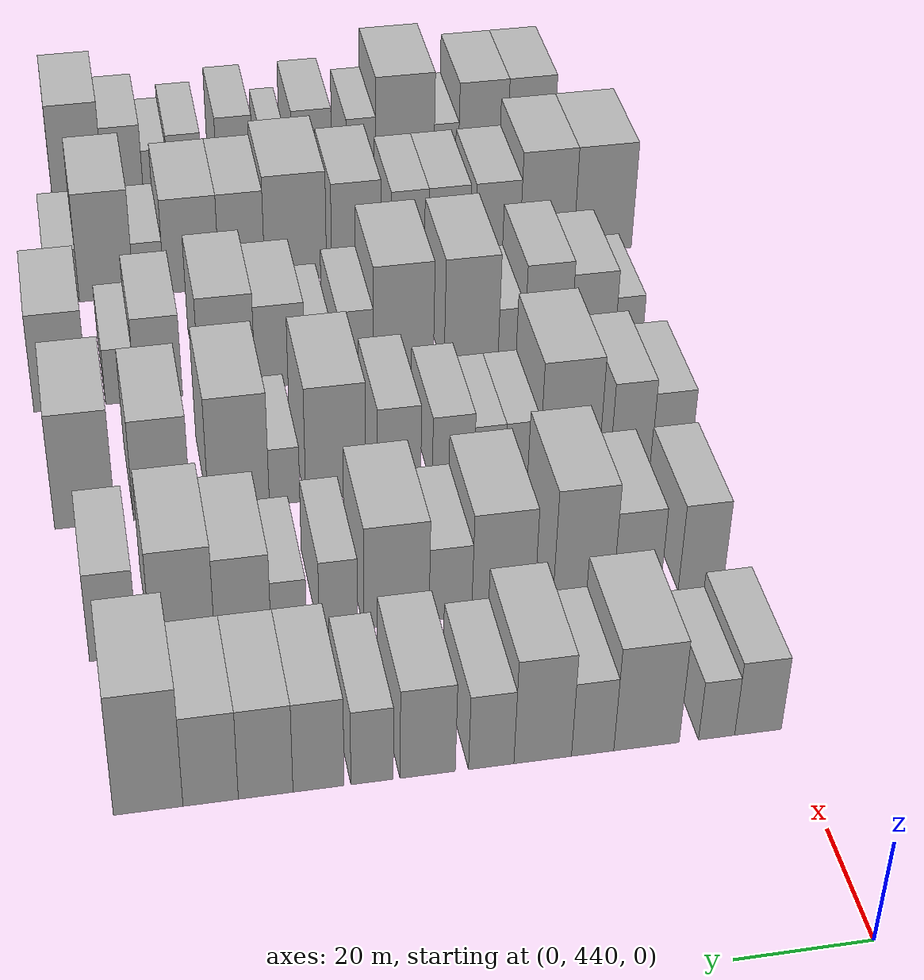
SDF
<sdf version="1.6">
 <world name="default">
  <model name="building_107">
   <static>1</static>
   <pose>50.0000 444.1435 0 0.000000 0.000000 0.000000</pose>
   <link name="link">
    <pose>0 0 7.50 0 0 0</pose>
    <collision name="collision"><geometry><box><size>20.0000 7.2730 15.0000</size></box></geometry></collision>
    <visual name="visual">
     <cast_shadows>0</cast_shadows>
     <geometry><box><size>20.0000 7.2730 15.0000</size></box></geometry>
     <material>
      <script>
       <uri>model://HANNAS_wall/materials/scripts</uri>
       <uri>model://HANNAS_wall/materials/textures</uri>
       <name>vrc/HANNAS_wall</name>
      </script>
     </material>
    </visual>
   </link>
  </model>
  <model name="building_108">
   <static>1</static>
   <pose>50.0000 450.5867 0 0.000000 0.000000 0.000000</pose>
   <link name="link">
    <pose>0 0 6.00 0 0 0</pose>
    <collision name="collision"><geometry><box><size>20.0000 5.6134 12.0000</size></box></geometry></collision>
    <visual name="visual">
     <cast_shadows>0</cast_shadows>
     <geometry><box><size>20.0000 5.6134 12.0000</size></box></geometry>
     <material>
      <script>
       <uri>model://HANNAS_wall/materials/scripts</uri>
       <uri>model://HANNAS_wall/materials/textures</uri>
       <name>vrc/HANNAS_wall</name>
      </script>
     </material>
    </visual>
   </link>
  </model>
  <model name="building_109">
   <static>1</static>
   <pose>50.0000 461.4292 0 0.000000 0.000000 0.000000</pose>
   <link name="link">
    <pose>0 0 10.50 0 0 0</pose>
    <collision name="collision"><geometry><box><size>20.0000 10.0715 21.0000</size></box></geometry></collision>
    <visual name="visual">
     <cast_shadows>0</cast_shadows>
     <geometry><box><size>20.0000 10.0715 21.0000</size></box></geometry>
     <material>
      <script>
       <uri>model://HANNAS_wall/materials/scripts</uri>
       <uri>model://HANNAS_wall/materials/textures</uri>
       <name>vrc/HANNAS_wall</name>
      </script>
     </material>
    </visual>
   </link>
  </model>
  <model name="building_110">
   <static>1</static>
   <pose>50.0000 469.7003 0 0.000000 0.000000 0.000000</pose>
   <link name="link">
    <pose>0 0 7.50 0 0 0</pose>
    <collision name="collision"><geometry><box><size>20.0000 6.4708 15.0000</size></box></geometry></collision>
    <visual name="visual">
     <cast_shadows>0</cast_shadows>
     <geometry><box><size>20.0000 6.4708 15.0000</size></box></geometry>
     <material>
      <script>
       <uri>model://HANNAS_wall/materials/scripts</uri>
       <uri>model://HANNAS_wall/materials/textures</uri>
       <name>vrc/HANNAS_wall</name>
      </script>
     </material>
    </visual>
   </link>
  </model>
  <model name="building_111">
   <static>1</static>
   <pose>50.0000 477.3151 0 0.000000 0.000000 0.000000</pose>
   <link name="link">
    <pose>0 0 10.50 0 0 0</pose>
    <collision name="collision"><geometry><box><size>20.0000 8.7586 21.0000</size></box></geometry></collision>
    <visual name="visual">
     <cast_shadows>0</cast_shadows>
     <geometry><box><size>20.0000 8.7586 21.0000</size></box></geometry>
     <material>
      <script>
       <uri>model://HANNAS_wall/materials/scripts</uri>
       <uri>model://HANNAS_wall/materials/textures</uri>
       <name>vrc/HANNAS_wall</name>
      </script>
     </material>
    </visual>
   </link>
  </model>
  <model name="building_112">
   <static>1</static>
   <pose>50.0000 485.1216 0 0.000000 0.000000 0.000000</pose>
   <link name="link">
    <pose>0 0 7.50 0 0 0</pose>
    <collision name="collision"><geometry><box><size>20.0000 6.8545 15.0000</size></box></geometry></collision>
    <visual name="visual">
     <cast_shadows>0</cast_shadows>
     <geometry><box><size>20.0000 6.8545 15.0000</size></box></geometry>
     <material>
      <script>
       <uri>model://HANNAS_wall/materials/scripts</uri>
       <uri>model://HANNAS_wall/materials/textures</uri>
       <name>vrc/HANNAS_wall</name>
      </script>
     </material>
    </visual>
   </link>
  </model>
  <model name="building_113">
   <static>1</static>
   <pose>50.0000 494.6960 0 0.000000 0.000000 0.000000</pose>
   <link name="link">
    <pose>0 0 9.00 0 0 0</pose>
    <collision name="collision"><geometry><box><size>20.0000 8.2941 18.0000</size></box></geometry></collision>
    <visual name="visual">
     <cast_shadows>0</cast_shadows>
     <geometry><box><size>20.0000 8.2941 18.0000</size></box></geometry>
     <material>
      <script>
       <uri>model://HANNAS_wall/materials/scripts</uri>
       <uri>model://HANNAS_wall/materials/textures</uri>
       <name>vrc/HANNAS_wall</name>
      </script>
     </material>
    </visual>
   </link>
  </model>
  <model name="building_114">
   <static>1</static>
   <pose>50.0000 502.9993 0 0.000000 0.000000 0.000000</pose>
   <link name="link">
    <pose>0 0 7.50 0 0 0</pose>
    <collision name="collision"><geometry><box><size>20.0000 6.3126 15.0000</size></box></geometry></collision>
    <visual name="visual">
     <cast_shadows>0</cast_shadows>
     <geometry><box><size>20.0000 6.3126 15.0000</size></box></geometry>
     <material>
      <script>
       <uri>model://HANNAS_wall/materials/scripts</uri>
       <uri>model://HANNAS_wall/materials/textures</uri>
       <name>vrc/HANNAS_wall</name>
      </script>
     </material>
    </visual>
   </link>
  </model>
  <model name="building_115">
   <static>1</static>
   <pose>50.0000 510.9421 0 0.000000 0.000000 0.000000</pose>
   <link name="link">
    <pose>0 0 9.00 0 0 0</pose>
    <collision name="collision"><geometry><box><size>20.0000 7.5730 18.0000</size></box></geometry></collision>
    <visual name="visual">
     <cast_shadows>0</cast_shadows>
     <geometry><box><size>20.0000 7.5730 18.0000</size></box></geometry>
     <material>
      <script>
       <uri>model://HANNAS_wall/materials/scripts</uri>
       <uri>model://HANNAS_wall/materials/textures</uri>
       <name>vrc/HANNAS_wall</name>
      </script>
     </material>
    </visual>
   </link>
  </model>
  <model name="building_116">
   <static>1</static>
   <pose>50.0000 518.7507 0 0.000000 0.000000 0.000000</pose>
   <link name="link">
    <pose>0 0 9.00 0 0 0</pose>
    <collision name="collision"><geometry><box><size>20.0000 8.0443 18.0000</size></box></geometry></collision>
    <visual name="visual">
     <cast_shadows>0</cast_shadows>
     <geometry><box><size>20.0000 8.0443 18.0000</size></box></geometry>
     <material>
      <script>
       <uri>model://HANNAS_wall/materials/scripts</uri>
       <uri>model://HANNAS_wall/materials/textures</uri>
       <name>vrc/HANNAS_wall</name>
      </script>
     </material>
    </visual>
   </link>
  </model>
  <model name="building_117">
   <static>1</static>
   <pose>50.0000 526.8168 0 0.000000 0.000000 0.000000</pose>
   <link name="link">
    <pose>0 0 9.00 0 0 0</pose>
    <collision name="collision"><geometry><box><size>20.0000 8.0880 18.0000</size></box></geometry></collision>
    <visual name="visual">
     <cast_shadows>0</cast_shadows>
     <geometry><box><size>20.0000 8.0880 18.0000</size></box></geometry>
     <material>
      <script>
       <uri>model://HANNAS_wall/materials/scripts</uri>
       <uri>model://HANNAS_wall/materials/textures</uri>
       <name>vrc/HANNAS_wall</name>
      </script>
     </material>
    </visual>
   </link>
  </model>
  <model name="building_118">
   <static>1</static>
   <pose>50.0000 535.9149 0 0.000000 0.000000 0.000000</pose>
   <link name="link">
    <pose>0 0 12.00 0 0 0</pose>
    <collision name="collision"><geometry><box><size>20.0000 10.1081 24.0000</size></box></geometry></collision>
    <visual name="visual">
     <cast_shadows>0</cast_shadows>
     <geometry><box><size>20.0000 10.1081 24.0000</size></box></geometry>
     <material>
      <script>
       <uri>model://HANNAS_wall/materials/scripts</uri>
       <uri>model://HANNAS_wall/materials/textures</uri>
       <name>vrc/HANNAS_wall</name>
      </script>
     </material>
    </visual>
   </link>
  </model>
  <model name="building_230">
   <static>1</static>
   <pose>82.0000 443.8423 0 0.000000 0.000000 0.000000</pose>
   <link name="link">
    <pose>0 0 9.00 0 0 0</pose>
    <collision name="collision"><geometry><box><size>20.0000 7.5049 18.0000</size></box></geometry></collision>
    <visual name="visual">
     <cast_shadows>0</cast_shadows>
     <geometry><box><size>20.0000 7.5049 18.0000</size></box></geometry>
     <material>
      <script>
       <uri>model://HANNAS_wall/materials/scripts</uri>
       <uri>model://HANNAS_wall/materials/textures</uri>
       <name>vrc/HANNAS_wall</name>
      </script>
     </material>
    </visual>
   </link>
  </model>
  <model name="building_231">
   <static>1</static>
   <pose>82.0000 454.5261 0 0.000000 0.000000 0.000000</pose>
   <link name="link">
    <pose>0 0 9.00 0 0 0</pose>
    <collision name="collision"><geometry><box><size>20.0000 7.8626 18.0000</size></box></geometry></collision>
    <visual name="visual">
     <cast_shadows>0</cast_shadows>
     <geometry><box><size>20.0000 7.8626 18.0000</size></box></geometry>
     <material>
      <script>
       <uri>model://HANNAS_wall/materials/scripts</uri>
       <uri>model://HANNAS_wall/materials/textures</uri>
       <name>vrc/HANNAS_wall</name>
      </script>
     </material>
    </visual>
   </link>
  </model>
  <model name="building_232">
   <static>1</static>
   <pose>82.0000 463.3936 0 0.000000 0.000000 0.000000</pose>
   <link name="link">
    <pose>0 0 12.00 0 0 0</pose>
    <collision name="collision"><geometry><box><size>20.0000 9.8724 24.0000</size></box></geometry></collision>
    <visual name="visual">
     <cast_shadows>0</cast_shadows>
     <geometry><box><size>20.0000 9.8724 24.0000</size></box></geometry>
     <material>
      <script>
       <uri>model://HANNAS_wall/materials/scripts</uri>
       <uri>model://HANNAS_wall/materials/textures</uri>
       <name>vrc/HANNAS_wall</name>
      </script>
     </material>
    </visual>
   </link>
  </model>
  <model name="building_233">
   <static>1</static>
   <pose>82.0000 476.4300 0 0.000000 0.000000 0.000000</pose>
   <link name="link">
    <pose>0 0 10.50 0 0 0</pose>
    <collision name="collision"><geometry><box><size>20.0000 10.2004 21.0000</size></box></geometry></collision>
    <visual name="visual">
     <cast_shadows>0</cast_shadows>
     <geometry><box><size>20.0000 10.2004 21.0000</size></box></geometry>
     <material>
      <script>
       <uri>model://HANNAS_wall/materials/scripts</uri>
       <uri>model://HANNAS_wall/materials/textures</uri>
       <name>vrc/HANNAS_wall</name>
      </script>
     </material>
    </visual>
   </link>
  </model>
  <model name="building_234">
   <static>1</static>
   <pose>82.0000 484.9787 0 0.000000 0.000000 0.000000</pose>
   <link name="link">
    <pose>0 0 7.50 0 0 0</pose>
    <collision name="collision"><geometry><box><size>20.0000 6.8971 15.0000</size></box></geometry></collision>
    <visual name="visual">
     <cast_shadows>0</cast_shadows>
     <geometry><box><size>20.0000 6.8971 15.0000</size></box></geometry>
     <material>
      <script>
       <uri>model://HANNAS_wall/materials/scripts</uri>
       <uri>model://HANNAS_wall/materials/textures</uri>
       <name>vrc/HANNAS_wall</name>
      </script>
     </material>
    </visual>
   </link>
  </model>
  <model name="building_235">
   <static>1</static>
   <pose>82.0000 493.6586 0 0.000000 0.000000 0.000000</pose>
   <link name="link">
    <pose>0 0 10.50 0 0 0</pose>
    <collision name="collision"><geometry><box><size>20.0000 10.4626 21.0000</size></box></geometry></collision>
    <visual name="visual">
     <cast_shadows>0</cast_shadows>
     <geometry><box><size>20.0000 10.4626 21.0000</size></box></geometry>
     <material>
      <script>
       <uri>model://HANNAS_wall/materials/scripts</uri>
       <uri>model://HANNAS_wall/materials/textures</uri>
       <name>vrc/HANNAS_wall</name>
      </script>
     </material>
    </visual>
   </link>
  </model>
  <model name="building_236">
   <static>1</static>
   <pose>82.0000 502.9506 0 0.000000 0.000000 0.000000</pose>
   <link name="link">
    <pose>0 0 7.50 0 0 0</pose>
    <collision name="collision"><geometry><box><size>20.0000 6.1216 15.0000</size></box></geometry></collision>
    <visual name="visual">
     <cast_shadows>0</cast_shadows>
     <geometry><box><size>20.0000 6.1216 15.0000</size></box></geometry>
     <material>
      <script>
       <uri>model://HANNAS_wall/materials/scripts</uri>
       <uri>model://HANNAS_wall/materials/textures</uri>
       <name>vrc/HANNAS_wall</name>
      </script>
     </material>
    </visual>
   </link>
  </model>
  <model name="building_237">
   <static>1</static>
   <pose>82.0000 510.8361 0 0.000000 0.000000 0.000000</pose>
   <link name="link">
    <pose>0 0 6.00 0 0 0</pose>
    <collision name="collision"><geometry><box><size>20.0000 5.6493 12.0000</size></box></geometry></collision>
    <visual name="visual">
     <cast_shadows>0</cast_shadows>
     <geometry><box><size>20.0000 5.6493 12.0000</size></box></geometry>
     <material>
      <script>
       <uri>model://HANNAS_wall/materials/scripts</uri>
       <uri>model://HANNAS_wall/materials/textures</uri>
       <name>vrc/HANNAS_wall</name>
      </script>
     </material>
    </visual>
   </link>
  </model>
  <model name="building_238">
   <static>1</static>
   <pose>82.0000 518.0949 0 0.000000 0.000000 0.000000</pose>
   <link name="link">
    <pose>0 0 9.00 0 0 0</pose>
    <collision name="collision"><geometry><box><size>20.0000 8.8684 18.0000</size></box></geometry></collision>
    <visual name="visual">
     <cast_shadows>0</cast_shadows>
     <geometry><box><size>20.0000 8.8684 18.0000</size></box></geometry>
     <material>
      <script>
       <uri>model://HANNAS_wall/materials/scripts</uri>
       <uri>model://HANNAS_wall/materials/textures</uri>
       <name>vrc/HANNAS_wall</name>
      </script>
     </material>
    </visual>
   </link>
  </model>
  <model name="building_239">
   <static>1</static>
   <pose>82.0000 527.5415 0 0.000000 0.000000 0.000000</pose>
   <link name="link">
    <pose>0 0 10.50 0 0 0</pose>
    <collision name="collision"><geometry><box><size>20.0000 10.0247 21.0000</size></box></geometry></collision>
    <visual name="visual">
     <cast_shadows>0</cast_shadows>
     <geometry><box><size>20.0000 10.0247 21.0000</size></box></geometry>
     <material>
      <script>
       <uri>model://HANNAS_wall/materials/scripts</uri>
       <uri>model://HANNAS_wall/materials/textures</uri>
       <name>vrc/HANNAS_wall</name>
      </script>
     </material>
    </visual>
   </link>
  </model>
  <model name="building_240">
   <static>1</static>
   <pose>82.0000 538.3490 0 0.000000 0.000000 0.000000</pose>
   <link name="link">
    <pose>0 0 9.00 0 0 0</pose>
    <collision name="collision"><geometry><box><size>20.0000 7.5904 18.0000</size></box></geometry></collision>
    <visual name="visual">
     <cast_shadows>0</cast_shadows>
     <geometry><box><size>20.0000 7.5904 18.0000</size></box></geometry>
     <material>
      <script>
       <uri>model://HANNAS_wall/materials/scripts</uri>
       <uri>model://HANNAS_wall/materials/textures</uri>
       <name>vrc/HANNAS_wall</name>
      </script>
     </material>
    </visual>
   </link>
  </model>
  <model name="building_353">
   <static>1</static>
   <pose>114.0000 439.8973 0 0.000000 0.000000 0.000000</pose>
   <link name="link">
    <pose>0 0 7.50 0 0 0</pose>
    <collision name="collision"><geometry><box><size>20.0000 7.1136 15.0000</size></box></geometry></collision>
    <visual name="visual">
     <cast_shadows>0</cast_shadows>
     <geometry><box><size>20.0000 7.1136 15.0000</size></box></geometry>
     <material>
      <script>
       <uri>model://HANNAS_wall/materials/scripts</uri>
       <uri>model://HANNAS_wall/materials/textures</uri>
       <name>vrc/HANNAS_wall</name>
      </script>
     </material>
    </visual>
   </link>
  </model>
  <model name="building_354">
   <static>1</static>
   <pose>114.0000 447.1032 0 0.000000 0.000000 0.000000</pose>
   <link name="link">
    <pose>0 0 9.00 0 0 0</pose>
    <collision name="collision"><geometry><box><size>20.0000 7.2982 18.0000</size></box></geometry></collision>
    <visual name="visual">
     <cast_shadows>0</cast_shadows>
     <geometry><box><size>20.0000 7.2982 18.0000</size></box></geometry>
     <material>
      <script>
       <uri>model://HANNAS_wall/materials/scripts</uri>
       <uri>model://HANNAS_wall/materials/textures</uri>
       <name>vrc/HANNAS_wall</name>
      </script>
     </material>
    </visual>
   </link>
  </model>
  <model name="building_355">
   <static>1</static>
   <pose>114.0000 457.9803 0 0.000000 0.000000 0.000000</pose>
   <link name="link">
    <pose>0 0 12.00 0 0 0</pose>
    <collision name="collision"><geometry><box><size>20.0000 10.4559 24.0000</size></box></geometry></collision>
    <visual name="visual">
     <cast_shadows>0</cast_shadows>
     <geometry><box><size>20.0000 10.4559 24.0000</size></box></geometry>
     <material>
      <script>
       <uri>model://HANNAS_wall/materials/scripts</uri>
       <uri>model://HANNAS_wall/materials/textures</uri>
       <name>vrc/HANNAS_wall</name>
      </script>
     </material>
    </visual>
   </link>
  </model>
  <model name="building_356">
   <static>1</static>
   <pose>114.0000 466.1855 0 0.000000 0.000000 0.000000</pose>
   <link name="link">
    <pose>0 0 6.00 0 0 0</pose>
    <collision name="collision"><geometry><box><size>20.0000 5.9545 12.0000</size></box></geometry></collision>
    <visual name="visual">
     <cast_shadows>0</cast_shadows>
     <geometry><box><size>20.0000 5.9545 12.0000</size></box></geometry>
     <material>
      <script>
       <uri>model://HANNAS_wall/materials/scripts</uri>
       <uri>model://HANNAS_wall/materials/textures</uri>
       <name>vrc/HANNAS_wall</name>
      </script>
     </material>
    </visual>
   </link>
  </model>
  <model name="building_357">
   <static>1</static>
   <pose>114.0000 471.8690 0 0.000000 0.000000 0.000000</pose>
   <link name="link">
    <pose>0 0 6.00 0 0 0</pose>
    <collision name="collision"><geometry><box><size>20.0000 5.4126 12.0000</size></box></geometry></collision>
    <visual name="visual">
     <cast_shadows>0</cast_shadows>
     <geometry><box><size>20.0000 5.4126 12.0000</size></box></geometry>
     <material>
      <script>
       <uri>model://HANNAS_wall/materials/scripts</uri>
       <uri>model://HANNAS_wall/materials/textures</uri>
       <name>vrc/HANNAS_wall</name>
      </script>
     </material>
    </visual>
   </link>
  </model>
  <model name="building_358">
   <static>1</static>
   <pose>114.0000 478.1960 0 0.000000 0.000000 0.000000</pose>
   <link name="link">
    <pose>0 0 7.50 0 0 0</pose>
    <collision name="collision"><geometry><box><size>20.0000 7.2413 15.0000</size></box></geometry></collision>
    <visual name="visual">
     <cast_shadows>0</cast_shadows>
     <geometry><box><size>20.0000 7.2413 15.0000</size></box></geometry>
     <material>
      <script>
       <uri>model://HANNAS_wall/materials/scripts</uri>
       <uri>model://HANNAS_wall/materials/textures</uri>
       <name>vrc/HANNAS_wall</name>
      </script>
     </material>
    </visual>
   </link>
  </model>
  <model name="building_359">
   <static>1</static>
   <pose>114.0000 487.5260 0 0.000000 0.000000 0.000000</pose>
   <link name="link">
    <pose>0 0 9.00 0 0 0</pose>
    <collision name="collision"><geometry><box><size>20.0000 7.4186 18.0000</size></box></geometry></collision>
    <visual name="visual">
     <cast_shadows>0</cast_shadows>
     <geometry><box><size>20.0000 7.4186 18.0000</size></box></geometry>
     <material>
      <script>
       <uri>model://HANNAS_wall/materials/scripts</uri>
       <uri>model://HANNAS_wall/materials/textures</uri>
       <name>vrc/HANNAS_wall</name>
      </script>
     </material>
    </visual>
   </link>
  </model>
  <model name="building_360">
   <static>1</static>
   <pose>114.0000 498.3604 0 0.000000 0.000000 0.000000</pose>
   <link name="link">
    <pose>0 0 12.00 0 0 0</pose>
    <collision name="collision"><geometry><box><size>20.0000 10.2502 24.0000</size></box></geometry></collision>
    <visual name="visual">
     <cast_shadows>0</cast_shadows>
     <geometry><box><size>20.0000 10.2502 24.0000</size></box></geometry>
     <material>
      <script>
       <uri>model://HANNAS_wall/materials/scripts</uri>
       <uri>model://HANNAS_wall/materials/textures</uri>
       <name>vrc/HANNAS_wall</name>
      </script>
     </material>
    </visual>
   </link>
  </model>
  <model name="building_361">
   <static>1</static>
   <pose>114.0000 507.0831 0 0.000000 0.000000 0.000000</pose>
   <link name="link">
    <pose>0 0 6.00 0 0 0</pose>
    <collision name="collision"><geometry><box><size>20.0000 5.1952 12.0000</size></box></geometry></collision>
    <visual name="visual">
     <cast_shadows>0</cast_shadows>
     <geometry><box><size>20.0000 5.1952 12.0000</size></box></geometry>
     <material>
      <script>
       <uri>model://HANNAS_wall/materials/scripts</uri>
       <uri>model://HANNAS_wall/materials/textures</uri>
       <name>vrc/HANNAS_wall</name>
      </script>
     </material>
    </visual>
   </link>
  </model>
  <model name="building_362">
   <static>1</static>
   <pose>114.0000 514.8184 0 0.000000 0.000000 0.000000</pose>
   <link name="link">
    <pose>0 0 12.00 0 0 0</pose>
    <collision name="collision"><geometry><box><size>20.0000 10.2754 24.0000</size></box></geometry></collision>
    <visual name="visual">
     <cast_shadows>0</cast_shadows>
     <geometry><box><size>20.0000 10.2754 24.0000</size></box></geometry>
     <material>
      <script>
       <uri>model://HANNAS_wall/materials/scripts</uri>
       <uri>model://HANNAS_wall/materials/textures</uri>
       <name>vrc/HANNAS_wall</name>
      </script>
     </material>
    </visual>
   </link>
  </model>
  <model name="building_363">
   <static>1</static>
   <pose>114.0000 527.7346 0 0.000000 0.000000 0.000000</pose>
   <link name="link">
    <pose>0 0 10.50 0 0 0</pose>
    <collision name="collision"><geometry><box><size>20.0000 9.5572 21.0000</size></box></geometry></collision>
    <visual name="visual">
     <cast_shadows>0</cast_shadows>
     <geometry><box><size>20.0000 9.5572 21.0000</size></box></geometry>
     <material>
      <script>
       <uri>model://HANNAS_wall/materials/scripts</uri>
       <uri>model://HANNAS_wall/materials/textures</uri>
       <name>vrc/HANNAS_wall</name>
      </script>
     </material>
    </visual>
   </link>
  </model>
  <model name="building_364">
   <static>1</static>
   <pose>114.0000 540.5787 0 0.000000 0.000000 0.000000</pose>
   <link name="link">
    <pose>0 0 12.00 0 0 0</pose>
    <collision name="collision"><geometry><box><size>20.0000 10.1309 24.0000</size></box></geometry></collision>
    <visual name="visual">
     <cast_shadows>0</cast_shadows>
     <geometry><box><size>20.0000 10.1309 24.0000</size></box></geometry>
     <material>
      <script>
       <uri>model://HANNAS_wall/materials/scripts</uri>
       <uri>model://HANNAS_wall/materials/textures</uri>
       <name>vrc/HANNAS_wall</name>
      </script>
     </material>
    </visual>
   </link>
  </model>
  <model name="building_469">
   <static>1</static>
   <pose>146.0000 439.1682 0 0.000000 0.000000 0.000000</pose>
   <link name="link">
    <pose>0 0 6.00 0 0 0</pose>
    <collision name="collision"><geometry><box><size>20.0000 5.2090 12.0000</size></box></geometry></collision>
    <visual name="visual">
     <cast_shadows>0</cast_shadows>
     <geometry><box><size>20.0000 5.2090 12.0000</size></box></geometry>
     <material>
      <script>
       <uri>model://HANNAS_wall/materials/scripts</uri>
       <uri>model://HANNAS_wall/materials/textures</uri>
       <name>vrc/HANNAS_wall</name>
      </script>
     </material>
    </visual>
   </link>
  </model>
  <model name="building_470">
   <static>1</static>
   <pose>146.0000 445.9263 0 0.000000 0.000000 0.000000</pose>
   <link name="link">
    <pose>0 0 9.00 0 0 0</pose>
    <collision name="collision"><geometry><box><size>20.0000 8.3071 18.0000</size></box></geometry></collision>
    <visual name="visual">
     <cast_shadows>0</cast_shadows>
     <geometry><box><size>20.0000 8.3071 18.0000</size></box></geometry>
     <material>
      <script>
       <uri>model://HANNAS_wall/materials/scripts</uri>
       <uri>model://HANNAS_wall/materials/textures</uri>
       <name>vrc/HANNAS_wall</name>
      </script>
     </material>
    </visual>
   </link>
  </model>
  <model name="building_471">
   <static>1</static>
   <pose>146.0000 454.4040 0 0.000000 0.000000 0.000000</pose>
   <link name="link">
    <pose>0 0 10.50 0 0 0</pose>
    <collision name="collision"><geometry><box><size>20.0000 8.6483 21.0000</size></box></geometry></collision>
    <visual name="visual">
     <cast_shadows>0</cast_shadows>
     <geometry><box><size>20.0000 8.6483 21.0000</size></box></geometry>
     <material>
      <script>
       <uri>model://HANNAS_wall/materials/scripts</uri>
       <uri>model://HANNAS_wall/materials/textures</uri>
       <name>vrc/HANNAS_wall</name>
      </script>
     </material>
    </visual>
   </link>
  </model>
  <model name="building_472">
   <static>1</static>
   <pose>146.0000 461.1334 0 0.000000 0.000000 0.000000</pose>
   <link name="link">
    <pose>0 0 6.00 0 0 0</pose>
    <collision name="collision"><geometry><box><size>20.0000 4.8104 12.0000</size></box></geometry></collision>
    <visual name="visual">
     <cast_shadows>0</cast_shadows>
     <geometry><box><size>20.0000 4.8104 12.0000</size></box></geometry>
     <material>
      <script>
       <uri>model://HANNAS_wall/materials/scripts</uri>
       <uri>model://HANNAS_wall/materials/textures</uri>
       <name>vrc/HANNAS_wall</name>
      </script>
     </material>
    </visual>
   </link>
  </model>
  <model name="building_473">
   <static>1</static>
   <pose>146.0000 468.5253 0 0.000000 0.000000 0.000000</pose>
   <link name="link">
    <pose>0 0 12.00 0 0 0</pose>
    <collision name="collision"><geometry><box><size>20.0000 9.9736 24.0000</size></box></geometry></collision>
    <visual name="visual">
     <cast_shadows>0</cast_shadows>
     <geometry><box><size>20.0000 9.9736 24.0000</size></box></geometry>
     <material>
      <script>
       <uri>model://HANNAS_wall/materials/scripts</uri>
       <uri>model://HANNAS_wall/materials/textures</uri>
       <name>vrc/HANNAS_wall</name>
      </script>
     </material>
    </visual>
   </link>
  </model>
  <model name="building_474">
   <static>1</static>
   <pose>146.0000 481.0120 0 0.000000 0.000000 0.000000</pose>
   <link name="link">
    <pose>0 0 12.00 0 0 0</pose>
    <collision name="collision"><geometry><box><size>20.0000 10.9998 24.0000</size></box></geometry></collision>
    <visual name="visual">
     <cast_shadows>0</cast_shadows>
     <geometry><box><size>20.0000 10.9998 24.0000</size></box></geometry>
     <material>
      <script>
       <uri>model://HANNAS_wall/materials/scripts</uri>
       <uri>model://HANNAS_wall/materials/textures</uri>
       <name>vrc/HANNAS_wall</name>
      </script>
     </material>
    </visual>
   </link>
  </model>
  <model name="building_475">
   <static>1</static>
   <pose>146.0000 489.7415 0 0.000000 0.000000 0.000000</pose>
   <link name="link">
    <pose>0 0 7.50 0 0 0</pose>
    <collision name="collision"><geometry><box><size>20.0000 6.4591 15.0000</size></box></geometry></collision>
    <visual name="visual">
     <cast_shadows>0</cast_shadows>
     <geometry><box><size>20.0000 6.4591 15.0000</size></box></geometry>
     <material>
      <script>
       <uri>model://HANNAS_wall/materials/scripts</uri>
       <uri>model://HANNAS_wall/materials/textures</uri>
       <name>vrc/HANNAS_wall</name>
      </script>
     </material>
    </visual>
   </link>
  </model>
  <model name="building_476">
   <static>1</static>
   <pose>146.0000 496.4686 0 0.000000 0.000000 0.000000</pose>
   <link name="link">
    <pose>0 0 6.00 0 0 0</pose>
    <collision name="collision"><geometry><box><size>20.0000 4.9952 12.0000</size></box></geometry></collision>
    <visual name="visual">
     <cast_shadows>0</cast_shadows>
     <geometry><box><size>20.0000 4.9952 12.0000</size></box></geometry>
     <material>
      <script>
       <uri>model://HANNAS_wall/materials/scripts</uri>
       <uri>model://HANNAS_wall/materials/textures</uri>
       <name>vrc/HANNAS_wall</name>
      </script>
     </material>
    </visual>
   </link>
  </model>
  <model name="building_477">
   <static>1</static>
   <pose>146.0000 503.4582 0 0.000000 0.000000 0.000000</pose>
   <link name="link">
    <pose>0 0 9.00 0 0 0</pose>
    <collision name="collision"><geometry><box><size>20.0000 8.9840 18.0000</size></box></geometry></collision>
    <visual name="visual">
     <cast_shadows>0</cast_shadows>
     <geometry><box><size>20.0000 8.9840 18.0000</size></box></geometry>
     <material>
      <script>
       <uri>model://HANNAS_wall/materials/scripts</uri>
       <uri>model://HANNAS_wall/materials/textures</uri>
       <name>vrc/HANNAS_wall</name>
      </script>
     </material>
    </visual>
   </link>
  </model>
  <model name="building_478">
   <static>1</static>
   <pose>146.0000 512.9906 0 0.000000 0.000000 0.000000</pose>
   <link name="link">
    <pose>0 0 10.50 0 0 0</pose>
    <collision name="collision"><geometry><box><size>20.0000 10.0807 21.0000</size></box></geometry></collision>
    <visual name="visual">
     <cast_shadows>0</cast_shadows>
     <geometry><box><size>20.0000 10.0807 21.0000</size></box></geometry>
     <material>
      <script>
       <uri>model://HANNAS_wall/materials/scripts</uri>
       <uri>model://HANNAS_wall/materials/textures</uri>
       <name>vrc/HANNAS_wall</name>
      </script>
     </material>
    </visual>
   </link>
  </model>
  <model name="building_479">
   <static>1</static>
   <pose>146.0000 525.2532 0 0.000000 0.000000 0.000000</pose>
   <link name="link">
    <pose>0 0 9.00 0 0 0</pose>
    <collision name="collision"><geometry><box><size>20.0000 8.4445 18.0000</size></box></geometry></collision>
    <visual name="visual">
     <cast_shadows>0</cast_shadows>
     <geometry><box><size>20.0000 8.4445 18.0000</size></box></geometry>
     <material>
      <script>
       <uri>model://HANNAS_wall/materials/scripts</uri>
       <uri>model://HANNAS_wall/materials/textures</uri>
       <name>vrc/HANNAS_wall</name>
      </script>
     </material>
    </visual>
   </link>
  </model>
  <model name="building_480">
   <static>1</static>
   <pose>146.0000 532.1170 0 0.000000 0.000000 0.000000</pose>
   <link name="link">
    <pose>0 0 6.00 0 0 0</pose>
    <collision name="collision"><geometry><box><size>20.0000 5.2832 12.0000</size></box></geometry></collision>
    <visual name="visual">
     <cast_shadows>0</cast_shadows>
     <geometry><box><size>20.0000 5.2832 12.0000</size></box></geometry>
     <material>
      <script>
       <uri>model://HANNAS_wall/materials/scripts</uri>
       <uri>model://HANNAS_wall/materials/textures</uri>
       <name>vrc/HANNAS_wall</name>
      </script>
     </material>
    </visual>
   </link>
  </model>
  <model name="building_481">
   <static>1</static>
   <pose>146.0000 542.5973 0 0.000000 0.000000 0.000000</pose>
   <link name="link">
    <pose>0 0 10.50 0 0 0</pose>
    <collision name="collision"><geometry><box><size>20.0000 9.6773 21.0000</size></box></geometry></collision>
    <visual name="visual">
     <cast_shadows>0</cast_shadows>
     <geometry><box><size>20.0000 9.6773 21.0000</size></box></geometry>
     <material>
      <script>
       <uri>model://HANNAS_wall/materials/scripts</uri>
       <uri>model://HANNAS_wall/materials/textures</uri>
       <name>vrc/HANNAS_wall</name>
      </script>
     </material>
    </visual>
   </link>
  </model>
  <model name="building_588">
   <static>1</static>
   <pose>178.0000 435.9264 0 0.000000 0.000000 0.000000</pose>
   <link name="link">
    <pose>0 0 12.00 0 0 0</pose>
    <collision name="collision"><geometry><box><size>20.0000 11.5989 24.0000</size></box></geometry></collision>
    <visual name="visual">
     <cast_shadows>0</cast_shadows>
     <geometry><box><size>20.0000 11.5989 24.0000</size></box></geometry>
     <material>
      <script>
       <uri>model://HANNAS_wall/materials/scripts</uri>
       <uri>model://HANNAS_wall/materials/textures</uri>
       <name>vrc/HANNAS_wall</name>
      </script>
     </material>
    </visual>
   </link>
  </model>
  <model name="building_589">
   <static>1</static>
   <pose>178.0000 447.0893 0 0.000000 0.000000 0.000000</pose>
   <link name="link">
    <pose>0 0 12.00 0 0 0</pose>
    <collision name="collision"><geometry><box><size>20.0000 10.7269 24.0000</size></box></geometry></collision>
    <visual name="visual">
     <cast_shadows>0</cast_shadows>
     <geometry><box><size>20.0000 10.7269 24.0000</size></box></geometry>
     <material>
      <script>
       <uri>model://HANNAS_wall/materials/scripts</uri>
       <uri>model://HANNAS_wall/materials/textures</uri>
       <name>vrc/HANNAS_wall</name>
      </script>
     </material>
    </visual>
   </link>
  </model>
  <model name="building_590">
   <static>1</static>
   <pose>178.0000 456.8621 0 0.000000 0.000000 0.000000</pose>
   <link name="link">
    <pose>0 0 9.00 0 0 0</pose>
    <collision name="collision"><geometry><box><size>20.0000 8.8187 18.0000</size></box></geometry></collision>
    <visual name="visual">
     <cast_shadows>0</cast_shadows>
     <geometry><box><size>20.0000 8.8187 18.0000</size></box></geometry>
     <material>
      <script>
       <uri>model://HANNAS_wall/materials/scripts</uri>
       <uri>model://HANNAS_wall/materials/textures</uri>
       <name>vrc/HANNAS_wall</name>
      </script>
     </material>
    </visual>
   </link>
  </model>
  <model name="building_591">
   <static>1</static>
   <pose>178.0000 466.3114 0 0.000000 0.000000 0.000000</pose>
   <link name="link">
    <pose>0 0 9.00 0 0 0</pose>
    <collision name="collision"><geometry><box><size>20.0000 8.0799 18.0000</size></box></geometry></collision>
    <visual name="visual">
     <cast_shadows>0</cast_shadows>
     <geometry><box><size>20.0000 8.0799 18.0000</size></box></geometry>
     <material>
      <script>
       <uri>model://HANNAS_wall/materials/scripts</uri>
       <uri>model://HANNAS_wall/materials/textures</uri>
       <name>vrc/HANNAS_wall</name>
      </script>
     </material>
    </visual>
   </link>
  </model>
  <model name="building_592">
   <static>1</static>
   <pose>178.0000 473.9775 0 0.000000 0.000000 0.000000</pose>
   <link name="link">
    <pose>0 0 9.00 0 0 0</pose>
    <collision name="collision"><geometry><box><size>20.0000 7.2522 18.0000</size></box></geometry></collision>
    <visual name="visual">
     <cast_shadows>0</cast_shadows>
     <geometry><box><size>20.0000 7.2522 18.0000</size></box></geometry>
     <material>
      <script>
       <uri>model://HANNAS_wall/materials/scripts</uri>
       <uri>model://HANNAS_wall/materials/textures</uri>
       <name>vrc/HANNAS_wall</name>
      </script>
     </material>
    </visual>
   </link>
  </model>
  <model name="building_593">
   <static>1</static>
   <pose>178.0000 484.3644 0 0.000000 0.000000 0.000000</pose>
   <link name="link">
    <pose>0 0 10.50 0 0 0</pose>
    <collision name="collision"><geometry><box><size>20.0000 9.5216 21.0000</size></box></geometry></collision>
    <visual name="visual">
     <cast_shadows>0</cast_shadows>
     <geometry><box><size>20.0000 9.5216 21.0000</size></box></geometry>
     <material>
      <script>
       <uri>model://HANNAS_wall/materials/scripts</uri>
       <uri>model://HANNAS_wall/materials/textures</uri>
       <name>vrc/HANNAS_wall</name>
      </script>
     </material>
    </visual>
   </link>
  </model>
  <model name="building_594">
   <static>1</static>
   <pose>178.0000 496.0597 0 0.000000 0.000000 0.000000</pose>
   <link name="link">
    <pose>0 0 12.00 0 0 0</pose>
    <collision name="collision"><geometry><box><size>20.0000 11.8689 24.0000</size></box></geometry></collision>
    <visual name="visual">
     <cast_shadows>0</cast_shadows>
     <geometry><box><size>20.0000 11.8689 24.0000</size></box></geometry>
     <material>
      <script>
       <uri>model://HANNAS_wall/materials/scripts</uri>
       <uri>model://HANNAS_wall/materials/textures</uri>
       <name>vrc/HANNAS_wall</name>
      </script>
     </material>
    </visual>
   </link>
  </model>
  <model name="building_595">
   <static>1</static>
   <pose>178.0000 506.3502 0 0.000000 0.000000 0.000000</pose>
   <link name="link">
    <pose>0 0 10.50 0 0 0</pose>
    <collision name="collision"><geometry><box><size>20.0000 8.7119 21.0000</size></box></geometry></collision>
    <visual name="visual">
     <cast_shadows>0</cast_shadows>
     <geometry><box><size>20.0000 8.7119 21.0000</size></box></geometry>
     <material>
      <script>
       <uri>model://HANNAS_wall/materials/scripts</uri>
       <uri>model://HANNAS_wall/materials/textures</uri>
       <name>vrc/HANNAS_wall</name>
      </script>
     </material>
    </visual>
   </link>
  </model>
  <model name="building_596">
   <static>1</static>
   <pose>178.0000 515.9423 0 0.000000 0.000000 0.000000</pose>
   <link name="link">
    <pose>0 0 10.50 0 0 0</pose>
    <collision name="collision"><geometry><box><size>20.0000 10.4724 21.0000</size></box></geometry></collision>
    <visual name="visual">
     <cast_shadows>0</cast_shadows>
     <geometry><box><size>20.0000 10.4724 21.0000</size></box></geometry>
     <material>
      <script>
       <uri>model://HANNAS_wall/materials/scripts</uri>
       <uri>model://HANNAS_wall/materials/textures</uri>
       <name>vrc/HANNAS_wall</name>
      </script>
     </material>
    </visual>
   </link>
  </model>
  <model name="building_597">
   <static>1</static>
   <pose>178.0000 524.0529 0 0.000000 0.000000 0.000000</pose>
   <link name="link">
    <pose>0 0 6.00 0 0 0</pose>
    <collision name="collision"><geometry><box><size>20.0000 5.7487 12.0000</size></box></geometry></collision>
    <visual name="visual">
     <cast_shadows>0</cast_shadows>
     <geometry><box><size>20.0000 5.7487 12.0000</size></box></geometry>
     <material>
      <script>
       <uri>model://HANNAS_wall/materials/scripts</uri>
       <uri>model://HANNAS_wall/materials/textures</uri>
       <name>vrc/HANNAS_wall</name>
      </script>
     </material>
    </visual>
   </link>
  </model>
  <model name="building_598">
   <static>1</static>
   <pose>178.0000 532.0906 0 0.000000 0.000000 0.000000</pose>
   <link name="link">
    <pose>0 0 12.00 0 0 0</pose>
    <collision name="collision"><geometry><box><size>20.0000 10.3266 24.0000</size></box></geometry></collision>
    <visual name="visual">
     <cast_shadows>0</cast_shadows>
     <geometry><box><size>20.0000 10.3266 24.0000</size></box></geometry>
     <material>
      <script>
       <uri>model://HANNAS_wall/materials/scripts</uri>
       <uri>model://HANNAS_wall/materials/textures</uri>
       <name>vrc/HANNAS_wall</name>
      </script>
     </material>
    </visual>
   </link>
  </model>
  <model name="building_599">
   <static>1</static>
   <pose>178.0000 540.2172 0 0.000000 0.000000 0.000000</pose>
   <link name="link">
    <pose>0 0 6.00 0 0 0</pose>
    <collision name="collision"><geometry><box><size>20.0000 5.9265 12.0000</size></box></geometry></collision>
    <visual name="visual">
     <cast_shadows>0</cast_shadows>
     <geometry><box><size>20.0000 5.9265 12.0000</size></box></geometry>
     <material>
      <script>
       <uri>model://HANNAS_wall/materials/scripts</uri>
       <uri>model://HANNAS_wall/materials/textures</uri>
       <name>vrc/HANNAS_wall</name>
      </script>
     </material>
    </visual>
   </link>
  </model>
  <model name="building_712">
   <static>1</static>
   <pose>210.0000 443.1245 0 0.000000 0.000000 0.000000</pose>
   <link name="link">
    <pose>0 0 10.50 0 0 0</pose>
    <collision name="collision"><geometry><box><size>20.0000 9.7452 21.0000</size></box></geometry></collision>
    <visual name="visual">
     <cast_shadows>0</cast_shadows>
     <geometry><box><size>20.0000 9.7452 21.0000</size></box></geometry>
     <material>
      <script>
       <uri>model://HANNAS_wall/materials/scripts</uri>
       <uri>model://HANNAS_wall/materials/textures</uri>
       <name>vrc/HANNAS_wall</name>
      </script>
     </material>
    </visual>
   </link>
  </model>
  <model name="building_713">
   <static>1</static>
   <pose>210.0000 453.0574 0 0.000000 0.000000 0.000000</pose>
   <link name="link">
    <pose>0 0 10.50 0 0 0</pose>
    <collision name="collision"><geometry><box><size>20.0000 10.1205 21.0000</size></box></geometry></collision>
    <visual name="visual">
     <cast_shadows>0</cast_shadows>
     <geometry><box><size>20.0000 10.1205 21.0000</size></box></geometry>
     <material>
      <script>
       <uri>model://HANNAS_wall/materials/scripts</uri>
       <uri>model://HANNAS_wall/materials/textures</uri>
       <name>vrc/HANNAS_wall</name>
      </script>
     </material>
    </visual>
   </link>
  </model>
  <model name="building_714">
   <static>1</static>
   <pose>210.0000 460.6411 0 0.000000 0.000000 0.000000</pose>
   <link name="link">
    <pose>0 0 6.00 0 0 0</pose>
    <collision name="collision"><geometry><box><size>20.0000 5.0469 12.0000</size></box></geometry></collision>
    <visual name="visual">
     <cast_shadows>0</cast_shadows>
     <geometry><box><size>20.0000 5.0469 12.0000</size></box></geometry>
     <material>
      <script>
       <uri>model://HANNAS_wall/materials/scripts</uri>
       <uri>model://HANNAS_wall/materials/textures</uri>
       <name>vrc/HANNAS_wall</name>
      </script>
     </material>
    </visual>
   </link>
  </model>
  <model name="building_715">
   <static>1</static>
   <pose>210.0000 469.1628 0 0.000000 0.000000 0.000000</pose>
   <link name="link">
    <pose>0 0 12.00 0 0 0</pose>
    <collision name="collision"><geometry><box><size>20.0000 11.9965 24.0000</size></box></geometry></collision>
    <visual name="visual">
     <cast_shadows>0</cast_shadows>
     <geometry><box><size>20.0000 11.9965 24.0000</size></box></geometry>
     <material>
      <script>
       <uri>model://HANNAS_wall/materials/scripts</uri>
       <uri>model://HANNAS_wall/materials/textures</uri>
       <name>vrc/HANNAS_wall</name>
      </script>
     </material>
    </visual>
   </link>
  </model>
  <model name="building_716">
   <static>1</static>
   <pose>210.0000 478.1654 0 0.000000 0.000000 0.000000</pose>
   <link name="link">
    <pose>0 0 7.50 0 0 0</pose>
    <collision name="collision"><geometry><box><size>20.0000 6.0087 15.0000</size></box></geometry></collision>
    <visual name="visual">
     <cast_shadows>0</cast_shadows>
     <geometry><box><size>20.0000 6.0087 15.0000</size></box></geometry>
     <material>
      <script>
       <uri>model://HANNAS_wall/materials/scripts</uri>
       <uri>model://HANNAS_wall/materials/textures</uri>
       <name>vrc/HANNAS_wall</name>
      </script>
     </material>
    </visual>
   </link>
  </model>
  <model name="building_717">
   <static>1</static>
   <pose>210.0000 488.1824 0 0.000000 0.000000 0.000000</pose>
   <link name="link">
    <pose>0 0 9.00 0 0 0</pose>
    <collision name="collision"><geometry><box><size>20.0000 8.0254 18.0000</size></box></geometry></collision>
    <visual name="visual">
     <cast_shadows>0</cast_shadows>
     <geometry><box><size>20.0000 8.0254 18.0000</size></box></geometry>
     <material>
      <script>
       <uri>model://HANNAS_wall/materials/scripts</uri>
       <uri>model://HANNAS_wall/materials/textures</uri>
       <name>vrc/HANNAS_wall</name>
      </script>
     </material>
    </visual>
   </link>
  </model>
  <model name="building_718">
   <static>1</static>
   <pose>210.0000 495.6443 0 0.000000 0.000000 0.000000</pose>
   <link name="link">
    <pose>0 0 6.00 0 0 0</pose>
    <collision name="collision"><geometry><box><size>20.0000 4.8985 12.0000</size></box></geometry></collision>
    <visual name="visual">
     <cast_shadows>0</cast_shadows>
     <geometry><box><size>20.0000 4.8985 12.0000</size></box></geometry>
     <material>
      <script>
       <uri>model://HANNAS_wall/materials/scripts</uri>
       <uri>model://HANNAS_wall/materials/textures</uri>
       <name>vrc/HANNAS_wall</name>
      </script>
     </material>
    </visual>
   </link>
  </model>
  <model name="building_719">
   <static>1</static>
   <pose>210.0000 503.7402 0 0.000000 0.000000 0.000000</pose>
   <link name="link">
    <pose>0 0 9.00 0 0 0</pose>
    <collision name="collision"><geometry><box><size>20.0000 7.2933 18.0000</size></box></geometry></collision>
    <visual name="visual">
     <cast_shadows>0</cast_shadows>
     <geometry><box><size>20.0000 7.2933 18.0000</size></box></geometry>
     <material>
      <script>
       <uri>model://HANNAS_wall/materials/scripts</uri>
       <uri>model://HANNAS_wall/materials/textures</uri>
       <name>vrc/HANNAS_wall</name>
      </script>
     </material>
    </visual>
   </link>
  </model>
  <model name="building_720">
   <static>1</static>
   <pose>210.0000 513.7990 0 0.000000 0.000000 0.000000</pose>
   <link name="link">
    <pose>0 0 7.50 0 0 0</pose>
    <collision name="collision"><geometry><box><size>20.0000 6.8243 15.0000</size></box></geometry></collision>
    <visual name="visual">
     <cast_shadows>0</cast_shadows>
     <geometry><box><size>20.0000 6.8243 15.0000</size></box></geometry>
     <material>
      <script>
       <uri>model://HANNAS_wall/materials/scripts</uri>
       <uri>model://HANNAS_wall/materials/textures</uri>
       <name>vrc/HANNAS_wall</name>
      </script>
     </material>
    </visual>
   </link>
  </model>
  <model name="building_721">
   <static>1</static>
   <pose>210.0000 519.7093 0 0.000000 0.000000 0.000000</pose>
   <link name="link">
    <pose>0 0 6.00 0 0 0</pose>
    <collision name="collision"><geometry><box><size>20.0000 4.9961 12.0000</size></box></geometry></collision>
    <visual name="visual">
     <cast_shadows>0</cast_shadows>
     <geometry><box><size>20.0000 4.9961 12.0000</size></box></geometry>
     <material>
      <script>
       <uri>model://HANNAS_wall/materials/scripts</uri>
       <uri>model://HANNAS_wall/materials/textures</uri>
       <name>vrc/HANNAS_wall</name>
      </script>
     </material>
    </visual>
   </link>
  </model>
  <model name="building_722">
   <static>1</static>
   <pose>210.0000 526.1735 0 0.000000 0.000000 0.000000</pose>
   <link name="link">
    <pose>0 0 9.00 0 0 0</pose>
    <collision name="collision"><geometry><box><size>20.0000 7.9324 18.0000</size></box></geometry></collision>
    <visual name="visual">
     <cast_shadows>0</cast_shadows>
     <geometry><box><size>20.0000 7.9324 18.0000</size></box></geometry>
     <material>
      <script>
       <uri>model://HANNAS_wall/materials/scripts</uri>
       <uri>model://HANNAS_wall/materials/textures</uri>
       <name>vrc/HANNAS_wall</name>
      </script>
     </material>
    </visual>
   </link>
  </model>
  <model name="building_723">
   <static>1</static>
   <pose>210.0000 535.1986 0 0.000000 0.000000 0.000000</pose>
   <link name="link">
    <pose>0 0 12.00 0 0 0</pose>
    <collision name="collision"><geometry><box><size>20.0000 10.1176 24.0000</size></box></geometry></collision>
    <visual name="visual">
     <cast_shadows>0</cast_shadows>
     <geometry><box><size>20.0000 10.1176 24.0000</size></box></geometry>
     <material>
      <script>
       <uri>model://HANNAS_wall/materials/scripts</uri>
       <uri>model://HANNAS_wall/materials/textures</uri>
       <name>vrc/HANNAS_wall</name>
      </script>
     </material>
    </visual>
   </link>
  </model>
 </world>
</sdf>
